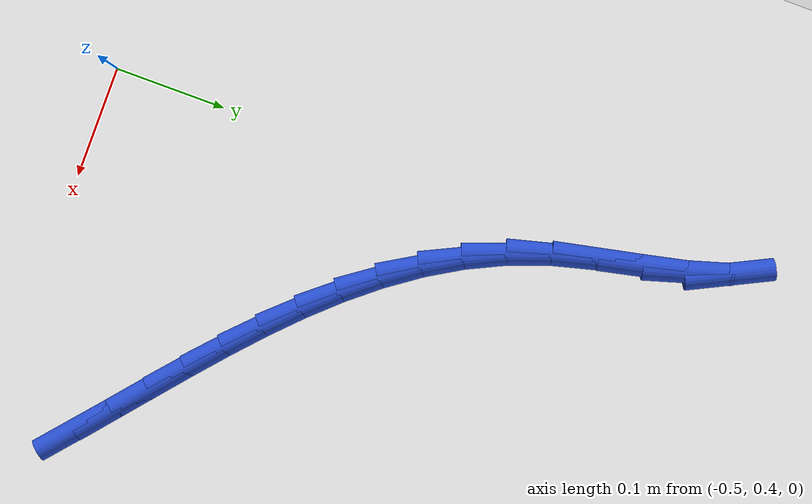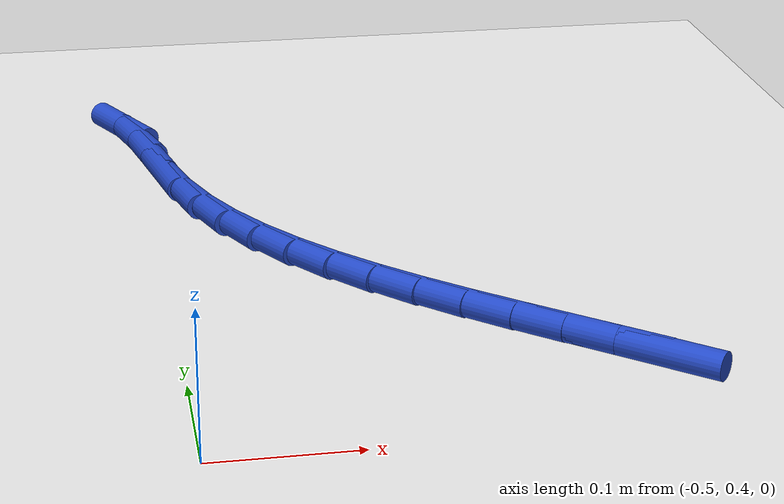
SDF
<sdf version="1.6">
 <world name="default">
  <model name="ground_plane">
   <static>1</static>
   <link name="link">
    <collision name="collision">
     <geometry><plane><normal>0 0 1</normal><size>100 100</size></plane></geometry>
     <surface><friction><ode><mu>100</mu><mu2>50</mu2></ode></friction></surface>
    </collision>
    <visual name="visual">
     <cast_shadows>0</cast_shadows>
     <geometry><plane><normal>0 0 1</normal><size>100 100</size></plane></geometry>
     <material>
      <script><uri>file://media/materials/scripts/gazebo.material</uri><name>Gazebo/WhiteGlow</name></script>
     </material>
    </visual>
   </link>
  </model>
  <model name="line">
   <link name="link_15">
    <pose>-0.19251731078859585 0.47802001187052917 0.01 0 1.57 -0.7105639254891665</pose>
    <collision name="collision">
     <geometry><cylinder><radius>0.01</radius><length>0.08</length></cylinder></geometry>
    </collision>
    <visual name="visual">
     <material>
      <script><name>Gazebo/Blue</name><uri>file://media/materials/scripts/gazebo.material</uri></script>
     </material>
     <geometry><cylinder><radius>0.01</radius><length>0.08</length></cylinder></geometry>
    </visual>
   </link>
   <link name="link_16">
    <pose>-0.22033834170683653 0.5019602785215994 0.01 0 1.57 -0.7016437874296276</pose>
    <collision name="collision">
     <geometry><cylinder><radius>0.01</radius><length>0.08</length></cylinder></geometry>
    </collision>
    <visual name="visual">
     <material>
      <script><name>Gazebo/Blue</name><uri>file://media/materials/scripts/gazebo.material</uri></script>
     </material>
     <geometry><cylinder><radius>0.01</radius><length>0.08</length></cylinder></geometry>
    </visual>
   </link>
   <link name="link_17">
    <pose>-0.24859447879125263 0.5258396035727206 0.01 0 1.57 -0.7039257250999026</pose>
    <collision name="collision">
     <geometry><cylinder><radius>0.01</radius><length>0.08</length></cylinder></geometry>
    </collision>
    <visual name="visual">
     <material>
      <script><name>Gazebo/Blue</name><uri>file://media/materials/scripts/gazebo.material</uri></script>
     </material>
     <geometry><cylinder><radius>0.01</radius><length>0.08</length></cylinder></geometry>
    </visual>
   </link>
   <link name="link_18">
    <pose>-0.27693410410928565 0.5499005550082894 0.01 0 1.57 -0.7172659782463904</pose>
    <collision name="collision">
     <geometry><cylinder><radius>0.01</radius><length>0.08</length></cylinder></geometry>
    </collision>
    <visual name="visual">
     <material>
      <script><name>Gazebo/Blue</name><uri>file://media/materials/scripts/gazebo.material</uri></script>
     </material>
     <geometry><cylinder><radius>0.01</radius><length>0.08</length></cylinder></geometry>
    </visual>
   </link>
   <link name="link_19">
    <pose>-0.30500559972837804 0.5743857008127036 0.01 0 1.57 -0.7417058360498545</pose>
    <collision name="collision">
     <geometry><cylinder><radius>0.01</radius><length>0.08</length></cylinder></geometry>
    </collision>
    <visual name="visual">
     <material>
      <script><name>Gazebo/Blue</name><uri>file://media/materials/scripts/gazebo.material</uri></script>
     </material>
     <geometry><cylinder><radius>0.01</radius><length>0.08</length></cylinder></geometry>
    </visual>
   </link>
   <link name="link_20">
    <pose>-0.3324573477159713 0.59953760897036 0.01 0 1.57 -0.7774209630364739</pose>
    <collision name="collision">
     <geometry><cylinder><radius>0.01</radius><length>0.08</length></cylinder></geometry>
    </collision>
    <visual name="visual">
     <material>
      <script><name>Gazebo/Blue</name><uri>file://media/materials/scripts/gazebo.material</uri></script>
     </material>
     <geometry><cylinder><radius>0.01</radius><length>0.08</length></cylinder></geometry>
    </visual>
   </link>
   <link name="link_21">
    <pose>-0.3589377301395075 0.625598847465656 0.01 0 1.57 -0.8246317318995979</pose>
    <collision name="collision">
     <geometry><cylinder><radius>0.01</radius><length>0.08</length></cylinder></geometry>
    </collision>
    <visual name="visual">
     <material>
      <script><name>Gazebo/Blue</name><uri>file://media/materials/scripts/gazebo.material</uri></script>
     </material>
     <geometry><cylinder><radius>0.01</radius><length>0.08</length></cylinder></geometry>
    </visual>
   </link>
   <link name="link_22">
    <pose>-0.3840951290664286 0.6528119842829887 0.01 0 1.57 -0.8834654898350305</pose>
    <collision name="collision">
     <geometry><cylinder><radius>0.01</radius><length>0.08</length></cylinder></geometry>
    </collision>
    <visual name="visual">
     <material>
      <script><name>Gazebo/Blue</name><uri>file://media/materials/scripts/gazebo.material</uri></script>
     </material>
     <geometry><cylinder><radius>0.01</radius><length>0.08</length></cylinder></geometry>
    </visual>
   </link>
   <link name="link_23">
    <pose>-0.40757792656417646 0.6814195874067552 0.01 0 1.57 -0.9537667515813676</pose>
    <collision name="collision">
     <geometry><cylinder><radius>0.01</radius><length>0.08</length></cylinder></geometry>
    </collision>
    <visual name="visual">
     <material>
      <script><name>Gazebo/Blue</name><uri>file://media/materials/scripts/gazebo.material</uri></script>
     </material>
     <geometry><cylinder><radius>0.01</radius><length>0.08</length></cylinder></geometry>
    </visual>
   </link>
   <link name="link_24">
    <pose>-0.429034504700193 0.7116642248213529 0.01 0 1.57 -1.0348706292430576</pose>
    <collision name="collision">
     <geometry><cylinder><radius>0.01</radius><length>0.08</length></cylinder></geometry>
    </collision>
    <visual name="visual">
     <material>
      <script><name>Gazebo/Blue</name><uri>file://media/materials/scripts/gazebo.material</uri></script>
     </material>
     <geometry><cylinder><radius>0.01</radius><length>0.08</length></cylinder></geometry>
    </visual>
   </link>
   <link name="link_25">
    <pose>-0.4481132455419201 0.7437884645111792 0.01 0 1.57 -1.1253904507145251</pose>
    <collision name="collision">
     <geometry><cylinder><radius>0.01</radius><length>0.08</length></cylinder></geometry>
    </collision>
    <visual name="visual">
     <material>
      <script><name>Gazebo/Blue</name><uri>file://media/materials/scripts/gazebo.material</uri></script>
     </material>
     <geometry><cylinder><radius>0.01</radius><length>0.08</length></cylinder></geometry>
    </visual>
   </link>
   <link name="link_26">
    <pose>-0.4644625311567998 0.778034874460631 0.01 0 1.57 -1.2231097033588787</pose>
    <collision name="collision">
     <geometry><cylinder><radius>0.01</radius><length>0.08</length></cylinder></geometry>
    </collision>
    <visual name="visual">
     <material>
      <script><name>Gazebo/Blue</name><uri>file://media/materials/scripts/gazebo.material</uri></script>
     </material>
     <geometry><cylinder><radius>0.01</radius><length>0.08</length></cylinder></geometry>
    </visual>
   </link>
   <link name="link_27">
    <pose>-0.47773074361227374 0.8146460226541054 0.01 0 1.57 -1.3179754953305867</pose>
    <collision name="collision">
     <geometry><cylinder><radius>0.01</radius><length>0.08</length></cylinder></geometry>
    </collision>
    <visual name="visual">
     <material>
      <script><name>Gazebo/Blue</name><uri>file://media/materials/scripts/gazebo.material</uri></script>
     </material>
     <geometry><cylinder><radius>0.01</radius><length>0.08</length></cylinder></geometry>
    </visual>
   </link>
   <link name="link_28">
    <pose>-0.4877997644193613 0.8536205374214973 0.01 0 1.57 -1.3667069288833278</pose>
    <collision name="collision">
     <geometry><cylinder><radius>0.01</radius><length>0.08</length></cylinder></geometry>
    </collision>
    <visual name="visual">
     <material>
      <script><name>Gazebo/Blue</name><uri>file://media/materials/scripts/gazebo.material</uri></script>
     </material>
     <geometry><cylinder><radius>0.01</radius><length>0.08</length></cylinder></geometry>
    </visual>
   </link>
   <link name="link_29">
    <pose>-0.49603454696372246 0.8934076642112743 0.01 0 1.57 -1.3570143810669486</pose>
    <collision name="collision">
     <geometry><cylinder><radius>0.01</radius><length>0.08</length></cylinder></geometry>
    </collision>
    <visual name="visual">
     <material>
      <script><name>Gazebo/Blue</name><uri>file://media/materials/scripts/gazebo.material</uri></script>
     </material>
     <geometry><cylinder><radius>0.01</radius><length>0.08</length></cylinder></geometry>
    </visual>
   </link>
   <link name="link_30">
    <pose>-0.5043804246000214 0.9318503185939813 0.01 0 1.57 -1.2813955251912204</pose>
    <collision name="collision">
     <geometry><cylinder><radius>0.01</radius><length>0.08</length></cylinder></geometry>
    </collision>
    <visual name="visual">
     <material>
      <script><name>Gazebo/Blue</name><uri>file://media/materials/scripts/gazebo.material</uri></script>
     </material>
     <geometry><cylinder><radius>0.01</radius><length>0.08</length></cylinder></geometry>
    </visual>
   </link>
   <link name="link_31">
    <pose>-0.5147840785955787 0.9667900079597309 0.01 0 1.57 -1.1134805893853406</pose>
    <collision name="collision">
     <geometry><cylinder><radius>0.01</radius><length>0.08</length></cylinder></geometry>
    </collision>
    <visual name="visual">
     <material>
      <script><name>Gazebo/Blue</name><uri>file://media/materials/scripts/gazebo.material</uri></script>
     </material>
     <geometry><cylinder><radius>0.01</radius><length>0.08</length></cylinder></geometry>
    </visual>
   </link>
  </model>
 </world>
</sdf>
